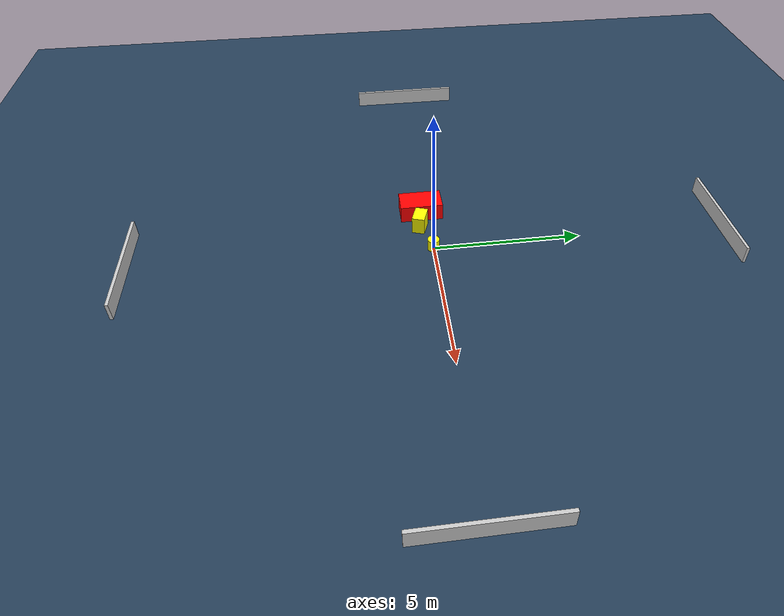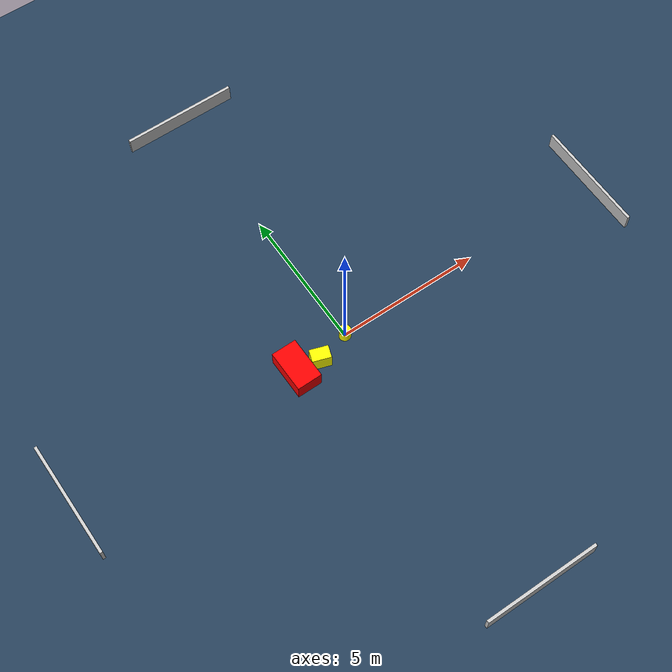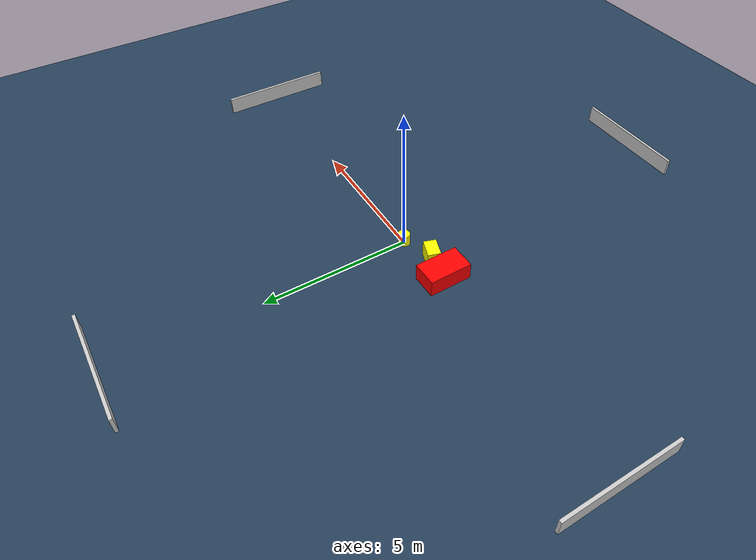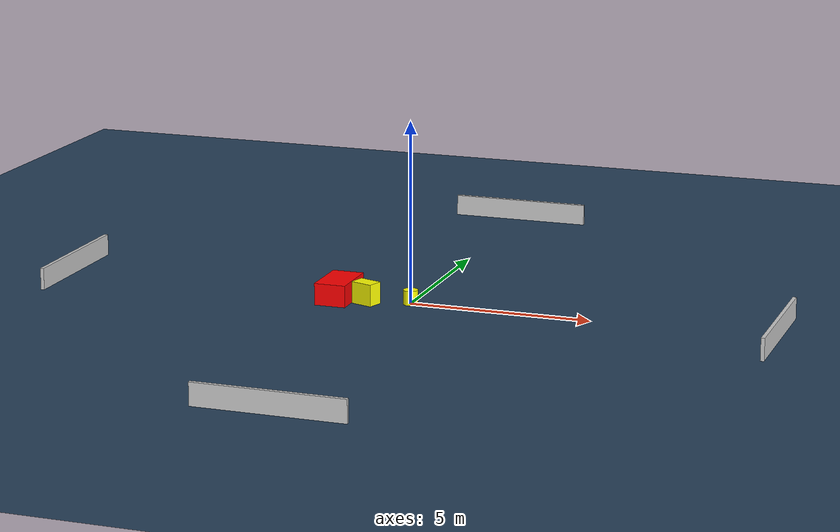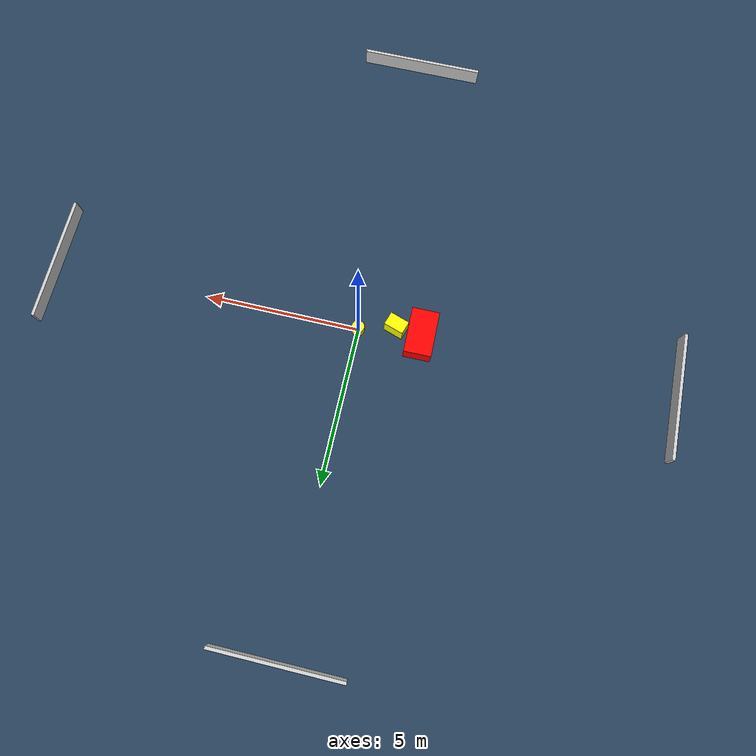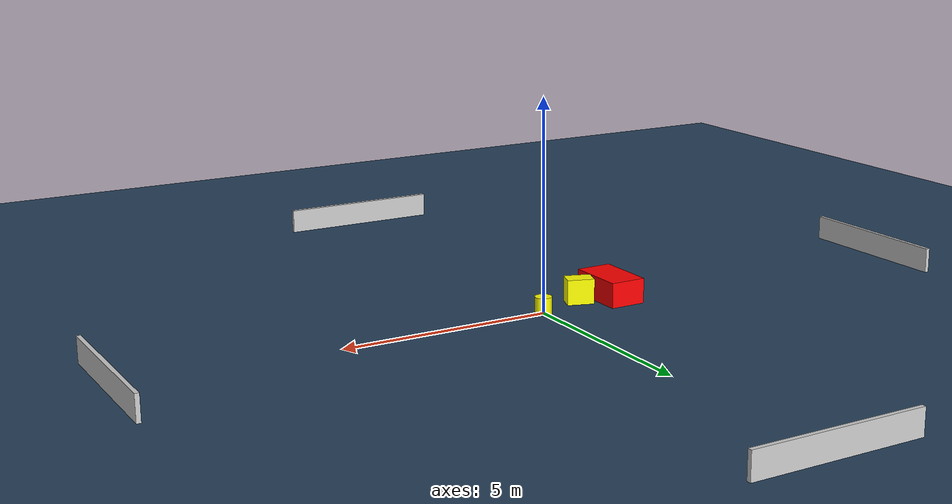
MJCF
<?xml version="1.0" ?>
<mujoco model="generated_environment">
  <option timestep="0.01" integrator="RK4" cone="elliptic"/>
  <default>
    <geom density="1"/>
  </default>
  <asset>
    <texture builtin="gradient" height="3072" name="skybox" rgb1="0.3 0.5 0.7" rgb2="0 0 0" type="skybox" width="512"/>
    <texture builtin="checker" height="300" name="groundplane" rgb1="0.2 0.3 0.4" rgb2="0.1 0.2 0.3" type="2d" width="300"/>
    <material name="groundplane" reflectance="0.2" texrepeat="5 5" texture="groundplane"/>
  </asset>
  <worldbody>
    <light dir="0 0 -1" directional="true" pos="0 0 1.5"/>
    <geom condim="3" friction="0.5 0.005 0.001" material="groundplane" name="floor" pos="0 0 0" size="0 0 0.05" type="plane"/>
    <body name="walls">
      <geom name="wall_1" condim="4" pos="-10.0 0.0 0.3" rgba="0.800000011920929 0.800000011920929 0.800000011920929 1.0" size="0.05 2.0 0.3" type="box"/>
      <geom name="wall_2" condim="4" pos="10.0 0.0 0.3" rgba="0.800000011920929 0.800000011920929 0.800000011920929 1.0" size="0.05 2.0 0.3" type="box"/>
      <geom name="wall_3" condim="4" pos="0.0 -10.0 0.3" rgba="0.800000011920929 0.800000011920929 0.800000011920929 1.0" size="2.0 0.05 0.3" type="box"/>
      <geom name="wall_4" condim="4" pos="0.0 10.0 0.3" rgba="0.800000011920929 0.800000011920929 0.800000011920929 1.0" size="2.0 0.05 0.3" type="box"/>
    </body>
    <body name="robot">
      <joint name="joint_x" type="slide" pos="0 0 0" axis="1 0 0"/>
      <joint name="joint_y" type="slide" pos="0 0 0" axis="0 1 0"/>
      <geom name="robot" type="cylinder" pos="0.0 0.0 0.2" size="0.2 0.2 0.0" mass="5.0" friction="1.0 0.005 0.0001" condim="4" rgba="1.0 1.0 0.0 1.0"/>
    </body>
    <body name="obstacle_1_movable">
      <geom name="obstacle_1_movable" condim="4" pos="-1.1625284964168927 -0.3209574181684221 0.3" euler="0 0 161.56779192467494" friction="0.0 0.005 0.001" rgba="1.0 1.0 0.0 1.0" size="0.31987011075895855 0.2163977978029828 0.3" type="box" mass="0.1"/>
      <joint type="free"/>
    </body>
    <body name="obstacle_2_static">
      <geom name="obstacle_2_static" condim="4" pos="-1.977699032773578 -0.21325128792839534 0.3" euler="0 0 90.54717532986082" friction="0.0 0.005 0.001" rgba="1.0 0.0 0.0 1.0" size="0.7312145832210732 0.4359556440377911 0.3" type="box"/>
    </body>
  </worldbody>
  <actuator>
    <motor name="actuator_x" joint="joint_x" gear="1" ctrlrange="-1 1"/>
    <motor name="actuator_y" joint="joint_y" gear="1" ctrlrange="-1 1"/>
  </actuator>
</mujoco>
